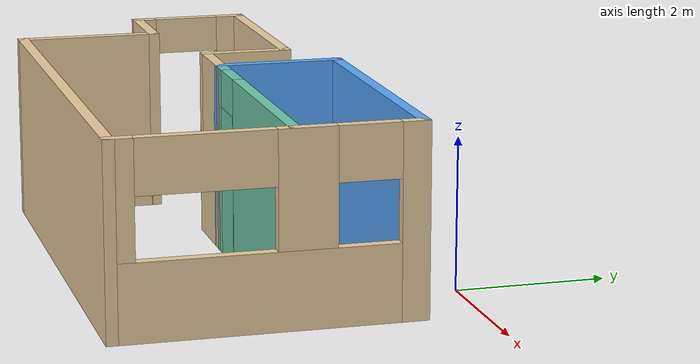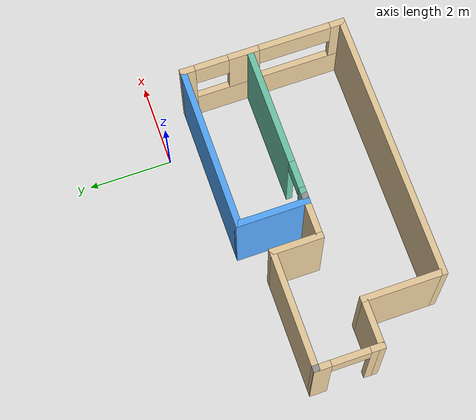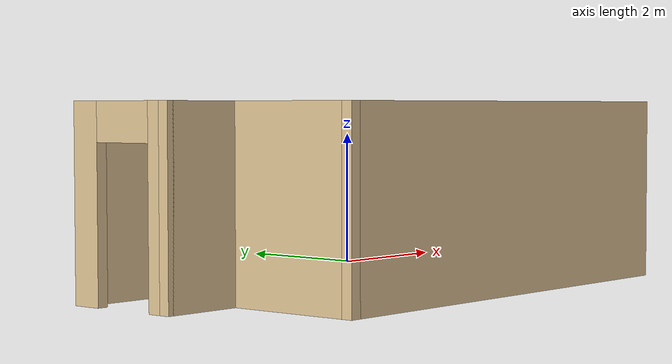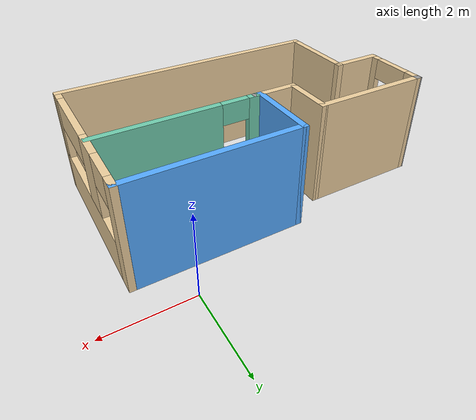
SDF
<?xml version='1.0'?>
<sdf version='1.6'>
  <model name='my_building'>
    <pose frame=''>-2.675 -2.715 0 0 -0 0</pose>
    <link name='Wall_0'>
      <collision name='Wall_0_Collision'>
        <geometry>
          <box>
            <size>2.75 0.15 2.5</size>
          </box>
        </geometry>
        <pose frame=''>0 0 1.25 0 -0 0</pose>
      </collision>
      <visual name='Wall_0_Visual'>
        <pose frame=''>0 0 1.25 0 -0 0</pose>
        <geometry>
          <box>
            <size>2.75 0.15 2.5</size>
          </box>
        </geometry>
        <material>
          <script>
            <uri>file://media/materials/scripts/gazebo.material</uri>
            <name>Gazebo/Grey</name>
          </script>
          <ambient>0.921569 0.807843 0.615686 1</ambient>
        </material>
        <meta>
          <layer>0</layer>
        </meta>
      </visual>
      <pose frame=''>-2.275 1.425 0 0 -0 0</pose>
    </link>
    <link name='Wall_1'>
      <collision name='Wall_1_Collision'>
        <geometry>
          <box>
            <size>1.25 0.15 2.5</size>
          </box>
        </geometry>
        <pose frame=''>0 0 1.25 0 -0 0</pose>
      </collision>
      <visual name='Wall_1_Visual'>
        <pose frame=''>0 0 1.25 0 -0 0</pose>
        <geometry>
          <box>
            <size>1.25 0.15 2.5</size>
          </box>
        </geometry>
        <material>
          <script>
            <uri>file://media/materials/scripts/gazebo.material</uri>
            <name>Gazebo/Grey</name>
          </script>
          <ambient>0.921569 0.807843 0.615686 1</ambient>
        </material>
        <meta>
          <layer>0</layer>
        </meta>
      </visual>
      <pose frame=''>-0.975 0.875 0 0 0 -1.5708</pose>
    </link>
    <link name='Wall_10'>
      <collision name='Wall_10_Collision'>
        <geometry>
          <box>
            <size>0.15 0.15 2.5</size>
          </box>
        </geometry>
        <pose frame=''>0 0 1.25 0 -0 0</pose>
      </collision>
      <visual name='Wall_10_Visual'>
        <pose frame=''>0 0 1.25 0 -0 0</pose>
        <geometry>
          <box>
            <size>0.15 0.15 2.5</size>
          </box>
        </geometry>
        <material>
          <script>
            <uri>file://media/materials/scripts/gazebo.material</uri>
            <name>Gazebo/Grey</name>
          </script>
          <ambient>1 1 1 1</ambient>
        </material>
        <meta>
          <layer>0</layer>
        </meta>
      </visual>
      <pose frame=''>-3.725 1.425 0 0 -0 0</pose>
    </link>
    <link name='Wall_12'>
      <pose frame=''>-3.725 0.675 0 0 -0 1.5708</pose>
      <visual name='Wall_12_Visual_0'>
        <pose frame=''>-0.658151 0 1.25 0 -0 0</pose>
        <geometry>
          <box>
            <size>0.333697 0.15 2.5</size>
          </box>
        </geometry>
        <material>
          <script>
            <uri>file://media/materials/scripts/gazebo.material</uri>
            <name>Gazebo/Grey</name>
          </script>
          <ambient>0.921569 0.807843 0.615686 1</ambient>
        </material>
        <meta>
          <layer>0</layer>
        </meta>
      </visual>
      <collision name='Wall_12_Collision_0'>
        <geometry>
          <box>
            <size>0.333697 0.15 2.5</size>
          </box>
        </geometry>
        <pose frame=''>-0.658151 0 1.25 0 -0 0</pose>
      </collision>
      <visual name='Wall_12_Visual_1'>
        <pose frame=''>0.616849 0 1.25 0 -0 0</pose>
        <geometry>
          <box>
            <size>0.416303 0.15 2.5</size>
          </box>
        </geometry>
        <material>
          <script>
            <uri>file://media/materials/scripts/gazebo.material</uri>
            <name>Gazebo/Grey</name>
          </script>
          <ambient>0.921569 0.807843 0.615686 1</ambient>
        </material>
        <meta>
          <layer>0</layer>
        </meta>
      </visual>
      <collision name='Wall_12_Collision_1'>
        <geometry>
          <box>
            <size>0.416303 0.15 2.5</size>
          </box>
        </geometry>
        <pose frame=''>0.616849 0 1.25 0 -0 0</pose>
      </collision>
      <visual name='Wall_12_Visual_2'>
        <pose frame=''>-0.041303 0 2.25 0 -0 0</pose>
        <geometry>
          <box>
            <size>0.9 0.15 0.5</size>
          </box>
        </geometry>
        <material>
          <script>
            <uri>file://media/materials/scripts/gazebo.material</uri>
            <name>Gazebo/Grey</name>
          </script>
          <ambient>0.921569 0.807843 0.615686 1</ambient>
        </material>
        <meta>
          <layer>0</layer>
        </meta>
      </visual>
      <collision name='Wall_12_Collision_2'>
        <geometry>
          <box>
            <size>0.9 0.15 0.5</size>
          </box>
        </geometry>
        <pose frame=''>-0.041303 0 2.25 0 -0 0</pose>
      </collision>
    </link>
    <link name='Wall_14'>
      <pose frame=''>1.854 0.325 0 0 -0 3.14159</pose>
      <visual name='Wall_14_Visual_0'>
        <pose frame=''>-0.465286 0 1.25 0 -0 0</pose>
        <geometry>
          <box>
            <size>2.91943 0.15 2.5</size>
          </box>
        </geometry>
        <material>
          <script>
            <uri>file://media/materials/scripts/gazebo.material</uri>
            <name>Gazebo/Grey</name>
          </script>
          <ambient>0.435294 0.796078 0.67451 1</ambient>
        </material>
        <meta>
          <layer>0</layer>
        </meta>
      </visual>
      <collision name='Wall_14_Collision_0'>
        <geometry>
          <box>
            <size>2.91943 0.15 2.5</size>
          </box>
        </geometry>
        <pose frame=''>-0.465286 0 1.25 0 -0 0</pose>
      </collision>
      <visual name='Wall_14_Visual_1'>
        <pose frame=''>1.78401 0 1.25 0 -0 0</pose>
        <geometry>
          <box>
            <size>0.281969 0.15 2.5</size>
          </box>
        </geometry>
        <material>
          <script>
            <uri>file://media/materials/scripts/gazebo.material</uri>
            <name>Gazebo/Grey</name>
          </script>
          <ambient>0.435294 0.796078 0.67451 1</ambient>
        </material>
        <meta>
          <layer>0</layer>
        </meta>
      </visual>
      <collision name='Wall_14_Collision_1'>
        <geometry>
          <box>
            <size>0.281969 0.15 2.5</size>
          </box>
        </geometry>
        <pose frame=''>1.78401 0 1.25 0 -0 0</pose>
      </collision>
      <visual name='Wall_14_Visual_2'>
        <pose frame=''>1.31873 0 2.25 0 -0 0</pose>
        <geometry>
          <box>
            <size>0.648602 0.15 0.5</size>
          </box>
        </geometry>
        <material>
          <script>
            <uri>file://media/materials/scripts/gazebo.material</uri>
            <name>Gazebo/Grey</name>
          </script>
          <ambient>0.435294 0.796078 0.67451 1</ambient>
        </material>
        <meta>
          <layer>0</layer>
        </meta>
      </visual>
      <collision name='Wall_14_Collision_2'>
        <geometry>
          <box>
            <size>0.648602 0.15 0.5</size>
          </box>
        </geometry>
        <pose frame=''>1.31873 0 2.25 0 -0 0</pose>
      </collision>
    </link>
    <link name='Wall_15'>
      <collision name='Wall_15_Collision'>
        <geometry>
          <box>
            <size>0.15 0.15 2.5</size>
          </box>
        </geometry>
        <pose frame=''>0 0 1.25 0 -0 0</pose>
      </collision>
      <visual name='Wall_15_Visual'>
        <pose frame=''>0 0 1.25 0 -0 0</pose>
        <geometry>
          <box>
            <size>0.15 0.15 2.5</size>
          </box>
        </geometry>
        <material>
          <script>
            <uri>file://media/materials/scripts/gazebo.material</uri>
            <name>Gazebo/Grey</name>
          </script>
          <ambient>1 1 1 1</ambient>
        </material>
        <meta>
          <layer>0</layer>
        </meta>
      </visual>
      <pose frame=''>0.004 0.325 0 0 -0 0</pose>
    </link>
    <link name='Wall_16'>
      <collision name='Wall_16_Collision'>
        <geometry>
          <box>
            <size>0.15 0.15 2.5</size>
          </box>
        </geometry>
        <pose frame=''>0 0 1.25 0 -0 0</pose>
      </collision>
      <visual name='Wall_16_Visual'>
        <pose frame=''>0 0 1.25 0 -0 0</pose>
        <geometry>
          <box>
            <size>0.15 0.15 2.5</size>
          </box>
        </geometry>
        <material>
          <script>
            <uri>file://media/materials/scripts/gazebo.material</uri>
            <name>Gazebo/Grey</name>
          </script>
          <ambient>1 1 1 1</ambient>
        </material>
        <meta>
          <layer>0</layer>
        </meta>
      </visual>
      <pose frame=''>0.004 0.325 0 0 -0 0</pose>
    </link>
    <link name='Wall_2'>
      <collision name='Wall_2_Collision'>
        <geometry>
          <box>
            <size>1 0.15 2.5</size>
          </box>
        </geometry>
        <pose frame=''>0 0 1.25 0 -0 0</pose>
      </collision>
      <visual name='Wall_2_Visual'>
        <pose frame=''>0 0 1.25 0 -0 0</pose>
        <geometry>
          <box>
            <size>1 0.15 2.5</size>
          </box>
        </geometry>
        <material>
          <script>
            <uri>file://media/materials/scripts/gazebo.material</uri>
            <name>Gazebo/Grey</name>
          </script>
          <ambient>0.921569 0.807843 0.615686 1</ambient>
        </material>
        <meta>
          <layer>0</layer>
        </meta>
      </visual>
      <pose frame=''>-0.55 0.325 0 0 -0 0</pose>
    </link>
    <link name='Wall_3'>
      <collision name='Wall_3_Collision'>
        <geometry>
          <box>
            <size>1.75 0.15 2.5</size>
          </box>
        </geometry>
        <pose frame=''>0 0 1.25 0 -0 0</pose>
      </collision>
      <visual name='Wall_3_Visual'>
        <pose frame=''>0 0 1.25 0 -0 0</pose>
        <geometry>
          <box>
            <size>1.75 0.15 2.5</size>
          </box>
        </geometry>
        <material>
          <script>
            <uri>file://media/materials/scripts/gazebo.material</uri>
            <name>Gazebo/Grey</name>
          </script>
          <ambient>0.333333 0.666667 1 1</ambient>
        </material>
        <meta>
          <layer>0</layer>
        </meta>
      </visual>
      <pose frame=''>-0.125 1.125 0 0 -0 1.5708</pose>
    </link>
    <link name='Wall_4'>
      <collision name='Wall_4_Collision'>
        <geometry>
          <box>
            <size>4 0.15 2.5</size>
          </box>
        </geometry>
        <pose frame=''>0 0 1.25 0 -0 0</pose>
      </collision>
      <visual name='Wall_4_Visual'>
        <pose frame=''>0 0 1.25 0 -0 0</pose>
        <geometry>
          <box>
            <size>4 0.15 2.5</size>
          </box>
        </geometry>
        <material>
          <script>
            <uri>file://media/materials/scripts/gazebo.material</uri>
            <name>Gazebo/Grey</name>
          </script>
          <ambient>0.333333 0.666667 1 1</ambient>
        </material>
        <meta>
          <layer>0</layer>
        </meta>
      </visual>
      <pose frame=''>1.8 1.925 0 0 -0 0</pose>
    </link>
    <link name='Wall_5'>
      <pose frame=''>3.725 0 0 0 0 -1.5708</pose>
      <visual name='Wall_5_Visual_0'>
        <pose frame=''>-1.82257 0 1.25 0 -0 0</pose>
        <geometry>
          <box>
            <size>0.354865 0.15 2.5</size>
          </box>
        </geometry>
        <material>
          <script>
            <uri>file://media/materials/scripts/gazebo.material</uri>
            <name>Gazebo/Grey</name>
          </script>
          <ambient>0.921569 0.807843 0.615686 1</ambient>
        </material>
        <meta>
          <layer>0</layer>
        </meta>
      </visual>
      <collision name='Wall_5_Collision_0'>
        <geometry>
          <box>
            <size>0.354865 0.15 2.5</size>
          </box>
        </geometry>
        <pose frame=''>-1.82257 0 1.25 0 -0 0</pose>
      </collision>
      <visual name='Wall_5_Visual_1'>
        <pose frame=''>0.177432 0 0.5 0 -0 0</pose>
        <geometry>
          <box>
            <size>3.64513 0.15 1</size>
          </box>
        </geometry>
        <material>
          <script>
            <uri>file://media/materials/scripts/gazebo.material</uri>
            <name>Gazebo/Grey</name>
          </script>
          <ambient>0.921569 0.807843 0.615686 1</ambient>
        </material>
        <meta>
          <layer>0</layer>
        </meta>
      </visual>
      <collision name='Wall_5_Collision_1'>
        <geometry>
          <box>
            <size>3.64513 0.15 1</size>
          </box>
        </geometry>
        <pose frame=''>0.177432 0 0.5 0 -0 0</pose>
      </collision>
      <visual name='Wall_5_Visual_2'>
        <pose frame=''>-0.473451 0 1.75 0 -0 0</pose>
        <geometry>
          <box>
            <size>0.743368 0.15 1.5</size>
          </box>
        </geometry>
        <material>
          <script>
            <uri>file://media/materials/scripts/gazebo.material</uri>
            <name>Gazebo/Grey</name>
          </script>
          <ambient>0.921569 0.807843 0.615686 1</ambient>
        </material>
        <meta>
          <layer>0</layer>
        </meta>
      </visual>
      <collision name='Wall_5_Collision_2'>
        <geometry>
          <box>
            <size>0.743368 0.15 1.5</size>
          </box>
        </geometry>
        <pose frame=''>-0.473451 0 1.75 0 -0 0</pose>
      </collision>
      <visual name='Wall_5_Visual_3'>
        <pose frame=''>1.81412 0 1.75 0 -0 0</pose>
        <geometry>
          <box>
            <size>0.371767 0.15 1.5</size>
          </box>
        </geometry>
        <material>
          <script>
            <uri>file://media/materials/scripts/gazebo.material</uri>
            <name>Gazebo/Grey</name>
          </script>
          <ambient>0.921569 0.807843 0.615686 1</ambient>
        </material>
        <meta>
          <layer>0</layer>
        </meta>
      </visual>
      <collision name='Wall_5_Collision_3'>
        <geometry>
          <box>
            <size>0.371767 0.15 1.5</size>
          </box>
        </geometry>
        <pose frame=''>1.81412 0 1.75 0 -0 0</pose>
      </collision>
      <visual name='Wall_5_Visual_4'>
        <pose frame=''>-1.24514 0 2.15 0 -0 0</pose>
        <geometry>
          <box>
            <size>0.8 0.15 0.7</size>
          </box>
        </geometry>
        <material>
          <script>
            <uri>file://media/materials/scripts/gazebo.material</uri>
            <name>Gazebo/Grey</name>
          </script>
          <ambient>0.921569 0.807843 0.615686 1</ambient>
        </material>
        <meta>
          <layer>0</layer>
        </meta>
      </visual>
      <collision name='Wall_5_Collision_4'>
        <geometry>
          <box>
            <size>0.8 0.15 0.7</size>
          </box>
        </geometry>
        <pose frame=''>-1.24514 0 2.15 0 -0 0</pose>
      </collision>
      <visual name='Wall_5_Visual_5'>
        <pose frame=''>0.763233 0 2.15 0 -0 0</pose>
        <geometry>
          <box>
            <size>1.73 0.15 0.7</size>
          </box>
        </geometry>
        <material>
          <script>
            <uri>file://media/materials/scripts/gazebo.material</uri>
            <name>Gazebo/Grey</name>
          </script>
          <ambient>0.921569 0.807843 0.615686 1</ambient>
        </material>
        <meta>
          <layer>0</layer>
        </meta>
      </visual>
      <collision name='Wall_5_Collision_5'>
        <geometry>
          <box>
            <size>1.73 0.15 0.7</size>
          </box>
        </geometry>
        <pose frame=''>0.763233 0 2.15 0 -0 0</pose>
      </collision>
    </link>
    <link name='Wall_6'>
      <collision name='Wall_6_Collision'>
        <geometry>
          <box>
            <size>6.5 0.15 2.5</size>
          </box>
        </geometry>
        <pose frame=''>0 0 1.25 0 -0 0</pose>
      </collision>
      <visual name='Wall_6_Visual'>
        <pose frame=''>0 0 1.25 0 -0 0</pose>
        <geometry>
          <box>
            <size>6.5 0.15 2.5</size>
          </box>
        </geometry>
        <material>
          <script>
            <uri>file://media/materials/scripts/gazebo.material</uri>
            <name>Gazebo/Grey</name>
          </script>
          <ambient>0.921569 0.807843 0.615686 1</ambient>
        </material>
        <meta>
          <layer>0</layer>
        </meta>
      </visual>
      <pose frame=''>0.55 -1.925 0 0 -0 3.14159</pose>
    </link>
    <link name='Wall_7'>
      <collision name='Wall_7_Collision'>
        <geometry>
          <box>
            <size>2 0.15 2.5</size>
          </box>
        </geometry>
        <pose frame=''>0 0 1.25 0 -0 0</pose>
      </collision>
      <visual name='Wall_7_Visual'>
        <pose frame=''>0 0 1.25 0 -0 0</pose>
        <geometry>
          <box>
            <size>2 0.15 2.5</size>
          </box>
        </geometry>
        <material>
          <script>
            <uri>file://media/materials/scripts/gazebo.material</uri>
            <name>Gazebo/Grey</name>
          </script>
          <ambient>0.921569 0.807843 0.615686 1</ambient>
        </material>
        <meta>
          <layer>0</layer>
        </meta>
      </visual>
      <pose frame=''>-2.625 -1 0 0 -0 1.5708</pose>
    </link>
    <link name='Wall_8'>
      <collision name='Wall_8_Collision'>
        <geometry>
          <box>
            <size>1.25 0.15 2.5</size>
          </box>
        </geometry>
        <pose frame=''>0 0 1.25 0 -0 0</pose>
      </collision>
      <visual name='Wall_8_Visual'>
        <pose frame=''>0 0 1.25 0 -0 0</pose>
        <geometry>
          <box>
            <size>1.25 0.15 2.5</size>
          </box>
        </geometry>
        <material>
          <script>
            <uri>file://media/materials/scripts/gazebo.material</uri>
            <name>Gazebo/Grey</name>
          </script>
          <ambient>0.921569 0.807843 0.615686 1</ambient>
        </material>
        <meta>
          <layer>0</layer>
        </meta>
      </visual>
      <pose frame=''>-3.175 -0.075 0 0 -0 3.14159</pose>
    </link>
    <static>1</static>
  </model>
</sdf>
